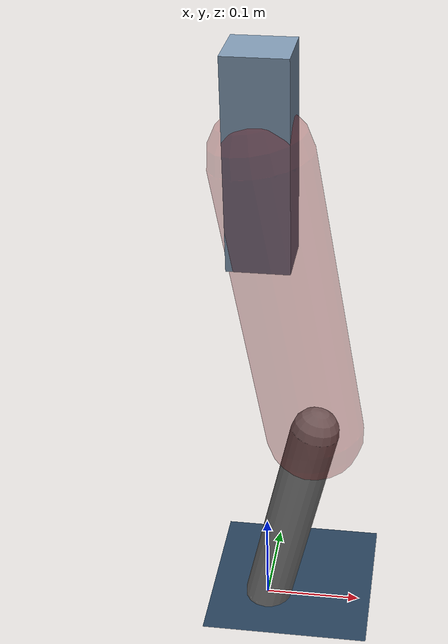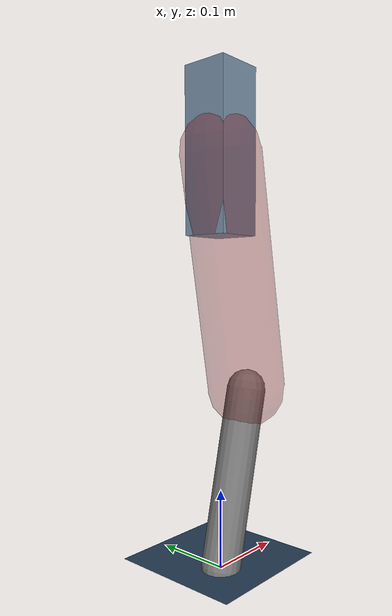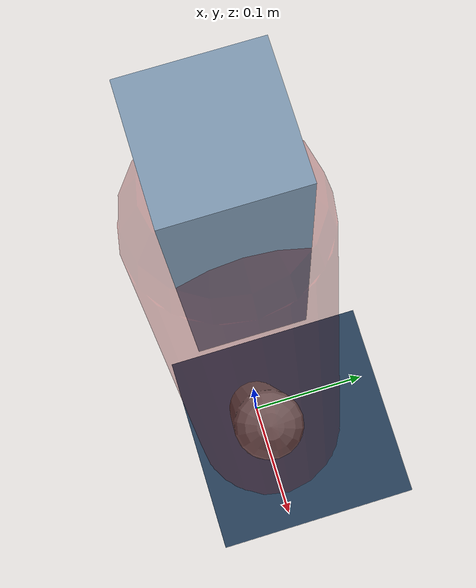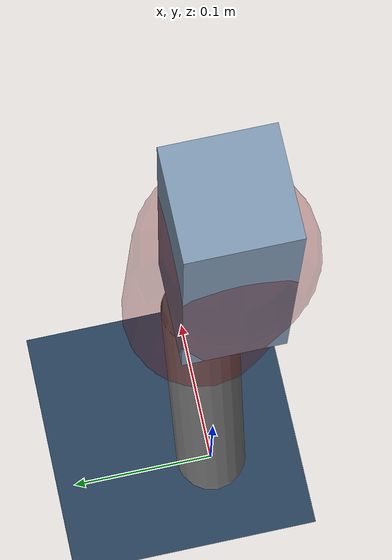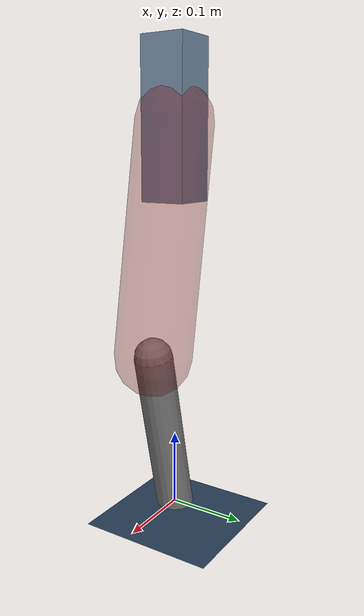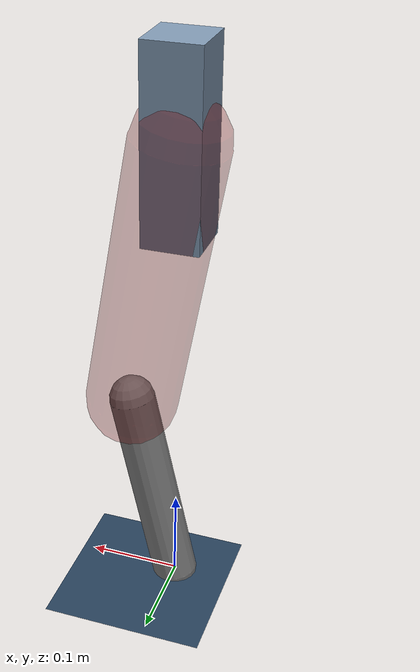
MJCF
<mujoco model="Hopper2D">
	<compiler inertiafromgeom="true" angle="radian" />
	<option timestep="0.001" integrator="implicit" cone="elliptic" solver="Newton" tolerance="1e-10" />

	<default>
		<geom contype="1" conaffinity="1" condim="3" friction="2 0.005 0.0001" solref="0.005 1" />
		<joint limited="true" damping="0.1" />
	</default>

	<asset>
		<texture name="skybox" type="skybox" builtin="gradient" rgb1=".4 .6 .8" rgb2="0 0 0" width="800" height="800" />
		<texture name="grid" type="2d" builtin="checker" rgb1=".1 .2 .3" rgb2=".2 .3 .4" width="300" height="300" mark="edge" markrgb=".2 .3 .4" />
		<material name="ground" texture="grid" texrepeat="1 1" texuniform="true" reflectance="0.1" />
		<material name="leg" rgba="0.5 0.6 0.7 1" />
	</asset>

	<worldbody>

		<geom name="floor" type="plane" size="5 5 0.25" material="ground" />

		<light directional="false" diffuse="0.8 0.8 0.8" specular="0.3 0.3 0.3" pos="0 0 2" dir="0 0 -1" />
		<light mode="targetbodycom" target="base" directional="false" diffuse="0.8 0.8 0.8" specular="0.3 0.3 0.3" pos="0 0 2" dir="0 0 -1" />

		<camera name="fixed" pos="0 -2 1" xyaxes="1 0 0 0 0 1" />
		<camera name="tracking" mode="trackcom" pos="0 -3 1" />

		<body name="root" pos="0 0 0.5170271134106932">
			<joint name="slide_x" type="slide" axis="1 0 0" range="-100 100" />
			<joint name="slide_z" type="slide" axis="0 0 1" range="0 10" />

			<body name="base" pos="0 0 0">
				<geom name="torso" type="box" size="0.03 0.03 0.1" mass="2.409" material="leg" />

				<body name="link1" pos="0 0 0" euler="0 1.3999268876679392 0">
					<joint type="hinge" axis="0 -1 0" pos="0 0 0" name="hinge1" limited="true" range="-3.14 3.14" stiffness="0" damping="0.1" />
					<geom name="thigh" type="capsule" fromto="0 0 0 0.2978024242879962 0 0" size="0.05" rgba="0.5 0 0 0.3" mass="0.9827665455775897" />

					<body name="link2" pos="0.2978024242879962 0 0" euler="0 0.39361711893250984 0">
						<joint type="hinge" axis="0 -1 0" pos="0 0 0" name="hinge2" limited="true" range="-3.14 3.14" stiffness="0" damping="0.1" />
						<geom name="shank" type="capsule" fromto="0 0 0 0.229224689122697 0 0" size="0.025" mass="0.4253797512981576" />

					</body>
				</body>
			</body>
		</body>
	</worldbody>

	<actuator>
		<motor name="torque1" joint="hinge1" ctrlrange="-70.33462706005113 70.33462706005113" ctrllimited="true" gear="1" />
		<motor name="torque2" joint="hinge2" ctrlrange="-99.52138996828559 99.52138996828559" ctrllimited="true" gear="1" />
	</actuator>
</mujoco>
